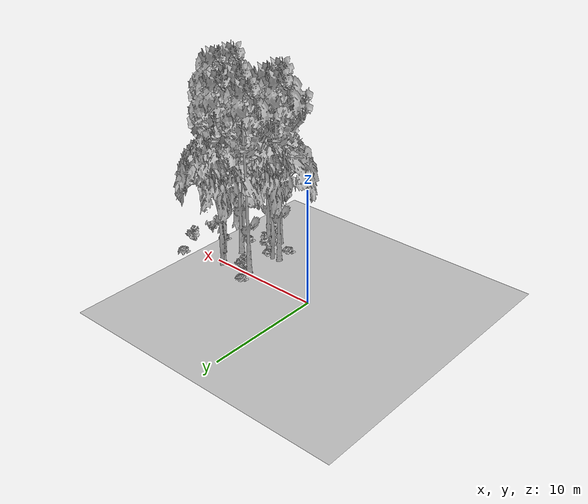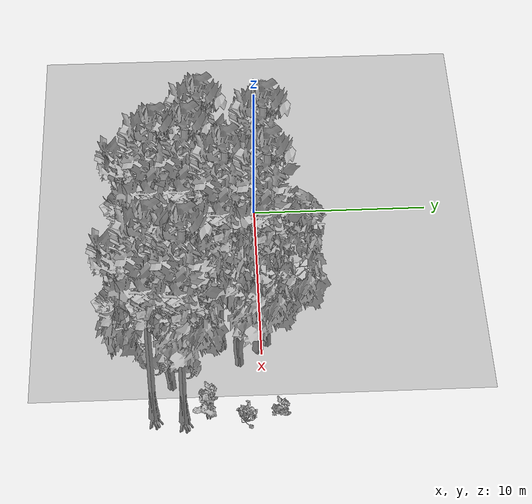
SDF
<sdf version="1.7">
 <world name="default">
  <model name="ground_plane">
   <static>1</static>
   <link name="link">
    <collision name="collision">
     <pose>-50 0 0 0 -0 0</pose>
     <geometry><plane><normal>0 0 1</normal><size>80 80</size></plane></geometry>
     <surface><contact><ode><min_depth>0.01</min_depth><max_vel>0</max_vel></ode></contact></surface>
    </collision>
    <visual name="grass">
     <cast_shadows>0</cast_shadows>
     <geometry>
      <mesh>
       <scale>0.46714285714285714 0.46714285714285714 0.1</scale>
       <uri>file://grass_plane/meshes/grass_plane.dae</uri>
      </mesh>
     </geometry>
    </visual>
   </link>
  </model>
  <model name="Tree 67">
   <static>1</static>
   <pose>13.791665936599799 -5.847765933392651 0 1.57079 -0 0</pose>
   <link name="link">
    <collision name="collision">
     <geometry><mesh><scale>3.5 5 3.5</scale><uri>model://tree_9/meshes/tree_9.obj</uri></mesh></geometry>
    </collision>
    <visual name="visual">
     <geometry><mesh><scale>3.5 5 3.5</scale><uri>model://tree_9/meshes/tree_9.obj</uri></mesh></geometry>
    </visual>
   </link>
  </model>
  <model name="Tree 126">
   <static>1</static>
   <pose>9.472782044522404 -2.1897068799947164 0 1.57079 -0 0</pose>
   <link name="link">
    <collision name="collision">
     <geometry><mesh><scale>3.5 5 3.5</scale><uri>model://tree_9/meshes/tree_9.obj</uri></mesh></geometry>
    </collision>
    <visual name="visual">
     <geometry><mesh><scale>3.5 5 3.5</scale><uri>model://tree_9/meshes/tree_9.obj</uri></mesh></geometry>
    </visual>
   </link>
  </model>
  <model name="Tree 140">
   <static>1</static>
   <pose>14.070313953872017 -4.243487466571956 0 1.57079 -0 0</pose>
   <link name="link">
    <collision name="collision">
     <geometry><mesh><scale>3.5 5 3.5</scale><uri>model://tree_9/meshes/tree_9.obj</uri></mesh></geometry>
    </collision>
    <visual name="visual">
     <geometry><mesh><scale>3.5 5 3.5</scale><uri>model://tree_9/meshes/tree_9.obj</uri></mesh></geometry>
    </visual>
   </link>
  </model>
  <model name="Tree 242">
   <static>1</static>
   <pose>9.692122702262246 -0.18801899481506013 0 1.57079 -0 0</pose>
   <link name="link">
    <collision name="collision">
     <geometry><mesh><scale>3.5 5 3.5</scale><uri>model://tree_9/meshes/tree_9.obj</uri></mesh></geometry>
    </collision>
    <visual name="visual">
     <geometry><mesh><scale>3.5 5 3.5</scale><uri>model://tree_9/meshes/tree_9.obj</uri></mesh></geometry>
    </visual>
   </link>
  </model>
  <model name="Tree 250">
   <static>1</static>
   <pose>8.031360078795075 -5.572447521636057 0 1.57079 -0 0</pose>
   <link name="link">
    <collision name="collision">
     <geometry><mesh><scale>3.5 5 3.5</scale><uri>model://tree_9/meshes/tree_9.obj</uri></mesh></geometry>
    </collision>
    <visual name="visual">
     <geometry><mesh><scale>3.5 5 3.5</scale><uri>model://tree_9/meshes/tree_9.obj</uri></mesh></geometry>
    </visual>
   </link>
  </model>
  <model name="Tree 307">
   <static>1</static>
   <pose>6.701450047615722 -0.26686549243251534 0 1.57079 -0 0</pose>
   <link name="link">
    <collision name="collision">
     <geometry><mesh><scale>3.5 5 3.5</scale><uri>model://tree_9/meshes/tree_9.obj</uri></mesh></geometry>
    </collision>
    <visual name="visual">
     <geometry><mesh><scale>3.5 5 3.5</scale><uri>model://tree_9/meshes/tree_9.obj</uri></mesh></geometry>
    </visual>
   </link>
  </model>
  <model name="Tree 339">
   <static>1</static>
   <pose>9.238240022835022 0.2874815532500392 0 1.57079 -0 0</pose>
   <link name="link">
    <collision name="collision">
     <geometry><mesh><scale>3.5 5 3.5</scale><uri>model://tree_2/meshes/tree_2.obj</uri></mesh></geometry>
    </collision>
    <visual name="visual">
     <geometry><mesh><scale>3.5 5 3.5</scale><uri>model://tree_2/meshes/tree_2.obj</uri></mesh></geometry>
    </visual>
   </link>
  </model>
  <model name="Tree 446">
   <static>1</static>
   <pose>6.158221153374257 -3.3729674732076376 0 1.57079 -0 0</pose>
   <link name="link">
    <collision name="collision">
     <geometry><mesh><scale>3.5 5 3.5</scale><uri>model://tree_9/meshes/tree_9.obj</uri></mesh></geometry>
    </collision>
    <visual name="visual">
     <geometry><mesh><scale>3.5 5 3.5</scale><uri>model://tree_9/meshes/tree_9.obj</uri></mesh></geometry>
    </visual>
   </link>
  </model>
  <model name="Tree 466">
   <static>1</static>
   <pose>11.878621099160547 -4.923382353399369 0 1.57079 -0 0</pose>
   <link name="link">
    <collision name="collision">
     <geometry><mesh><scale>3.5 5 3.5</scale><uri>model://tree_2/meshes/tree_2.obj</uri></mesh></geometry>
    </collision>
    <visual name="visual">
     <geometry><mesh><scale>3.5 5 3.5</scale><uri>model://tree_2/meshes/tree_2.obj</uri></mesh></geometry>
    </visual>
   </link>
  </model>
  <model name="Tree 511">
   <static>1</static>
   <pose>7.974825080693165 -4.024284868197569 0 1.57079 -0 0</pose>
   <link name="link">
    <collision name="collision">
     <geometry><mesh><scale>3.5 5 3.5</scale><uri>model://tree_9/meshes/tree_9.obj</uri></mesh></geometry>
    </collision>
    <visual name="visual">
     <geometry><mesh><scale>3.5 5 3.5</scale><uri>model://tree_9/meshes/tree_9.obj</uri></mesh></geometry>
    </visual>
   </link>
  </model>
  <model name="Tree 523">
   <static>1</static>
   <pose>10.49079839672747 -1.2522869786453938 0 1.57079 -0 0</pose>
   <link name="link">
    <collision name="collision">
     <geometry><mesh><scale>3.5 5 3.5</scale><uri>model://tree_2/meshes/tree_2.obj</uri></mesh></geometry>
    </collision>
    <visual name="visual">
     <geometry><mesh><scale>3.5 5 3.5</scale><uri>model://tree_2/meshes/tree_2.obj</uri></mesh></geometry>
    </visual>
   </link>
  </model>
  <model name="Tree 563">
   <static>1</static>
   <pose>6.720985908395917 -3.270341709521986 0 1.57079 -0 0</pose>
   <link name="link">
    <collision name="collision">
     <geometry><mesh><scale>3.5 5 3.5</scale><uri>model://tree_2/meshes/tree_2.obj</uri></mesh></geometry>
    </collision>
    <visual name="visual">
     <geometry><mesh><scale>3.5 5 3.5</scale><uri>model://tree_2/meshes/tree_2.obj</uri></mesh></geometry>
    </visual>
   </link>
  </model>
  <model name="Bush 6">
   <static>1</static>
   <pose>7.406560388081637 -0.3215273376100072 0 1.57079 -0 0</pose>
   <link name="link">
    <collision name="collision">
     <geometry><mesh><scale>2 2 2</scale><uri>model://bush_4/meshes/bush_4.obj</uri></mesh></geometry>
     <surface><contact><collide_without_contact>false</collide_without_contact></contact></surface>
    </collision>
    <visual name="visual">
     <geometry><mesh><scale>2 2 2</scale><uri>model://bush_4/meshes/bush_4.obj</uri></mesh></geometry>
    </visual>
   </link>
  </model>
  <model name="Bush 15">
   <static>1</static>
   <pose>6.473996577654589 0.8766491495164175 0 1.57079 -0 0</pose>
   <link name="link">
    <collision name="collision">
     <geometry><mesh><scale>2 2 2</scale><uri>model://bush_2/meshes/bush_2.obj</uri></mesh></geometry>
     <surface><contact><collide_without_contact>false</collide_without_contact></contact></surface>
    </collision>
    <visual name="visual">
     <geometry><mesh><scale>2 2 2</scale><uri>model://bush_2/meshes/bush_2.obj</uri></mesh></geometry>
    </visual>
   </link>
  </model>
  <model name="Bush 35">
   <static>1</static>
   <pose>6.479619831973373 -4.959341061216463 0 1.57079 -0 0</pose>
   <link name="link">
    <collision name="collision">
     <geometry><mesh><scale>2 2 2</scale><uri>model://bush_2/meshes/bush_2.obj</uri></mesh></geometry>
     <surface><contact><collide_without_contact>false</collide_without_contact></contact></surface>
    </collision>
    <visual name="visual">
     <geometry><mesh><scale>2 2 2</scale><uri>model://bush_2/meshes/bush_2.obj</uri></mesh></geometry>
    </visual>
   </link>
  </model>
  <model name="Bush 238">
   <static>1</static>
   <pose>13.970984494086387 -3.024062659666214 0 1.57079 -0 0</pose>
   <link name="link">
    <collision name="collision">
     <geometry><mesh><scale>2 2 2</scale><uri>model://bush_0/meshes/bush_0.obj</uri></mesh></geometry>
     <surface><contact><collide_without_contact>false</collide_without_contact></contact></surface>
    </collision>
    <visual name="visual">
     <geometry><mesh><scale>2 2 2</scale><uri>model://bush_0/meshes/bush_0.obj</uri></mesh></geometry>
    </visual>
   </link>
  </model>
  <model name="Bush 279">
   <static>1</static>
   <pose>8.762945897415094 -5.625965667778829 0 1.57079 -0 0</pose>
   <link name="link">
    <collision name="collision">
     <geometry><mesh><scale>2 2 2</scale><uri>model://bush_4/meshes/bush_4.obj</uri></mesh></geometry>
     <surface><contact><collide_without_contact>false</collide_without_contact></contact></surface>
    </collision>
    <visual name="visual">
     <geometry><mesh><scale>2 2 2</scale><uri>model://bush_4/meshes/bush_4.obj</uri></mesh></geometry>
    </visual>
   </link>
  </model>
  <model name="Bush 335">
   <static>1</static>
   <pose>10.49180548287871 -4.131279492797546 0 1.57079 -0 0</pose>
   <link name="link">
    <collision name="collision">
     <geometry><mesh><scale>2 2 2</scale><uri>model://bush_2/meshes/bush_2.obj</uri></mesh></geometry>
     <surface><contact><collide_without_contact>false</collide_without_contact></contact></surface>
    </collision>
    <visual name="visual">
     <geometry><mesh><scale>2 2 2</scale><uri>model://bush_2/meshes/bush_2.obj</uri></mesh></geometry>
    </visual>
   </link>
  </model>
  <model name="Bush 357">
   <static>1</static>
   <pose>13.436908788318846 0.8946773320623151 0 1.57079 -0 0</pose>
   <link name="link">
    <collision name="collision">
     <geometry><mesh><scale>2 2 2</scale><uri>model://bush_2/meshes/bush_2.obj</uri></mesh></geometry>
     <surface><contact><collide_without_contact>false</collide_without_contact></contact></surface>
    </collision>
    <visual name="visual">
     <geometry><mesh><scale>2 2 2</scale><uri>model://bush_2/meshes/bush_2.obj</uri></mesh></geometry>
    </visual>
   </link>
  </model>
  <model name="Bush 390">
   <static>1</static>
   <pose>7.54920179887533 -3.562047542916318 0 1.57079 -0 0</pose>
   <link name="link">
    <collision name="collision">
     <geometry><mesh><scale>2 2 2</scale><uri>model://bush_2/meshes/bush_2.obj</uri></mesh></geometry>
     <surface><contact><collide_without_contact>false</collide_without_contact></contact></surface>
    </collision>
    <visual name="visual">
     <geometry><mesh><scale>2 2 2</scale><uri>model://bush_2/meshes/bush_2.obj</uri></mesh></geometry>
    </visual>
   </link>
  </model>
  <model name="Bush 393">
   <static>1</static>
   <pose>12.341117791979379 -2.98637304113322 0 1.57079 -0 0</pose>
   <link name="link">
    <collision name="collision">
     <geometry><mesh><scale>2 2 2</scale><uri>model://bush_2/meshes/bush_2.obj</uri></mesh></geometry>
     <surface><contact><collide_without_contact>false</collide_without_contact></contact></surface>
    </collision>
    <visual name="visual">
     <geometry><mesh><scale>2 2 2</scale><uri>model://bush_2/meshes/bush_2.obj</uri></mesh></geometry>
    </visual>
   </link>
  </model>
  <model name="Bush 568">
   <static>1</static>
   <pose>14.191415369209842 -0.9970612684973759 0 1.57079 -0 0</pose>
   <link name="link">
    <collision name="collision">
     <geometry><mesh><scale>2 2 2</scale><uri>model://bush_4/meshes/bush_4.obj</uri></mesh></geometry>
     <surface><contact><collide_without_contact>false</collide_without_contact></contact></surface>
    </collision>
    <visual name="visual">
     <geometry><mesh><scale>2 2 2</scale><uri>model://bush_4/meshes/bush_4.obj</uri></mesh></geometry>
    </visual>
   </link>
  </model>
  <model name="Bush 608">
   <static>1</static>
   <pose>8.037714474728908 -4.419203611944411 0 1.57079 -0 0</pose>
   <link name="link">
    <collision name="collision">
     <geometry><mesh><scale>2 2 2</scale><uri>model://bush_1/meshes/bush_1.obj</uri></mesh></geometry>
     <surface><contact><collide_without_contact>false</collide_without_contact></contact></surface>
    </collision>
    <visual name="visual">
     <geometry><mesh><scale>2 2 2</scale><uri>model://bush_1/meshes/bush_1.obj</uri></mesh></geometry>
    </visual>
   </link>
  </model>
 </world>
</sdf>
